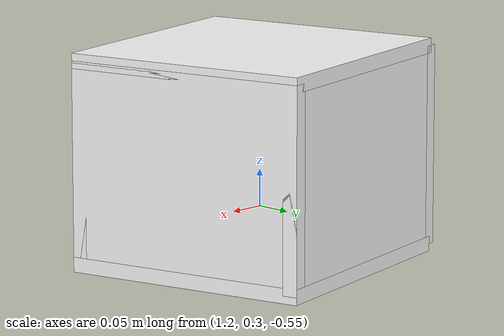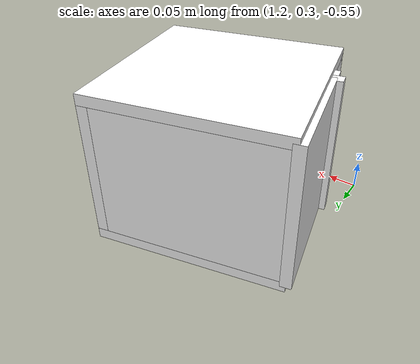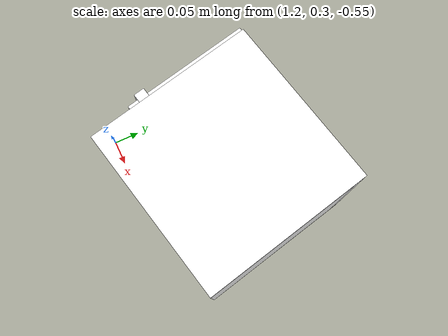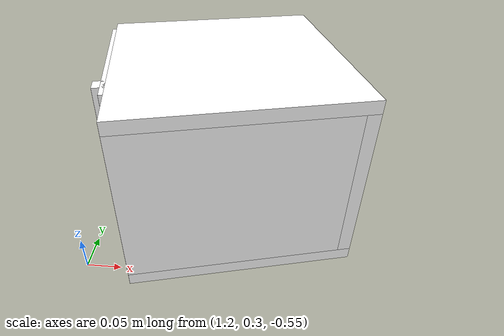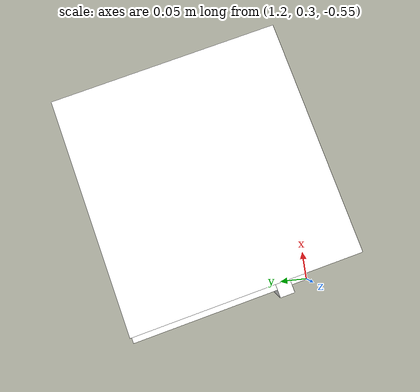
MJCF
<mujoco model="cabinet">
    <compiler angle="radian" eulerseq='zxy' />
    <option gravity = "0 0 0" />
    <option>
        <flag contact = "disable"/>
    </option>
    <statistic	extent="1.0" center="0.0 0.0 0.0"/>
    <visual>
        <map fogstart="3" fogend="5" force="0.1" znear=" 0.100000 " zfar=" 12.000000 "/>
    </visual>
    <size njmax="500" nconmax="100" />
    <actuator>
        <velocity joint="bottom_left_hinge" name="viva_revolution" kv='10'></velocity>
    </actuator>
    <asset>
        <texture builtin="flat" name="tabletex" height="32" width="32" rgb1="1 1 1" type="cube"></texture>
        <texture builtin="flat" name="objtex" height="32" width="32" rgb1="1 1 1" type="cube"></texture>
        <texture builtin="flat" name="handletex" height="32" width="32" rgb1="1 1 1" type="cube"></texture>
        <texture builtin="flat" name="wallpaper" height="32" width="32" rgb1="1 0 0" type="cube"></texture>
        <texture builtin="flat" name="kp" height="32" width="32" rgb1="1 1 1" type="cube"></texture>
        <material name="geomTable" shininess="0.03" specular="0.75" texture="tabletex"></material>
        <material name="geomObj" shininess="0.03" specular="0.75" texture="objtex"></material>
        <material name="geomHandle" shininess="0.03" specular="0.75" texture="handletex"></material>
        <material name="ax" shininess="0.03" specular="0.75" texture="wallpaper"></material>
        <material name="bg" shininess="0.03" specular="0.75" texture="wallpaper"></material>
        <material name="geomKeypad" shininess="0.03" specular="0.75" texture="kp"></material>
    </asset>
    <worldbody>
        <body name="cabinet_bottom" pos= " 1.388026 0.474145 -0.553036 "  quat= " -0.113983 0.000000 0.000000 0.993483" >
            <inertial pos="0 0 0" mass="1" diaginertia="1 1 1" />
            <geom size= " 0.162341 0.158170 0.009387 "  type="box" material="geomObj" name="b"/>
            <body name="cabinet_left" pos= " 0.000000 -0.148782 0.126226 " >
                <inertial pos="0 0 0" mass="1" diaginertia="1 1 1" />
                <geom size= " 0.162341 0.009387 0.126226 "  type="box" material="geomObj" name="c" />
            </body>
            <body name="cabinet_right" pos= " 0.000000 0.148782 0.126226 " >
                <inertial pos="0 0 0" mass="1" diaginertia="1 1 1" />
                <geom size= " 0.162341 0.009387 0.126226 "  type="box" material="geomObj" name="d" />
            </body>
            <body name="cabinet_top" pos= " 0.000000 0.000000 0.252453 " >
                <inertial pos="0 0 0" mass="1" diaginertia="1 1 1" />
                <geom size= " 0.162341 0.158170 0.009387 "  type="box" material="geomObj" name="e"/>
            </body>
            <body name="cabinet_back" pos= " -0.152954 0.000000 0.126226 "  >
                <inertial pos="0 0 0" mass="1" diaginertia="1 1 1" />
                <geom size= " 0.009387 0.158170 0.126226 "  type="box" material="geomObj" name="f" />
            </body>
            <body name="cabinet_keypad" pos= " 0.009387 0.117627 0.126226 " >
                <inertial pos="0 0 0" mass="1" diaginertia="1 1 1" />
                <geom size= " 0.152954 0.039542 0.116839 "  type="box" material="geomKeypad" name="keypizzlemynizzle" />
            </body>
            <body name="cabinet_left_hinge" pos= " 0.162341 -0.158170 0.126226 " >
                <inertial pos= " 0.000000 0.118627 0.000000 "  mass="1" diaginertia="1 1 1" />
                <joint name="bottom_left_hinge" type="hinge" pos="0 0 0" axis="0 0 1" limited="true" range= "-2.3 0"  />
                <geom size= " 0.009387 0.118627 0.126226 "  pos= " 0.000000 0.118627 0.000000 "  type="box" material="geomObj" name="g"/>
                <body name="handle_link" pos= " 0.010000 0.207254 0.000000 " >
                    <inertial pos="0 0 0" mass="1" diaginertia="1 1 1" />
                    <geom size= " 0.010000 0.010000 0.126226 "  type="box" material="geomHandle" name="h"/>
                </body>
            </body>
        </body>
        <body name="external_camera_body_0" pos="0.0 0 0.00" >
            <camera euler="-1.57 1.57 0.0" fovy=" 54.280851 " name="external_camera_0" pos="0.0 0 0"></camera>
            <inertial pos= " 0.00 0.0 0.000000 " mass="1" diaginertia="1 1 1" />
            <joint name="cam_j" pos="0.0 0 0" axis = "1 0 0" type="free" />
        </body>
    </worldbody>
</mujoco>
